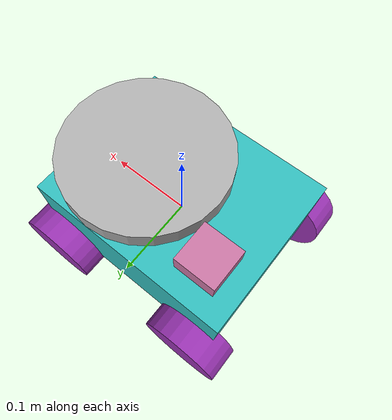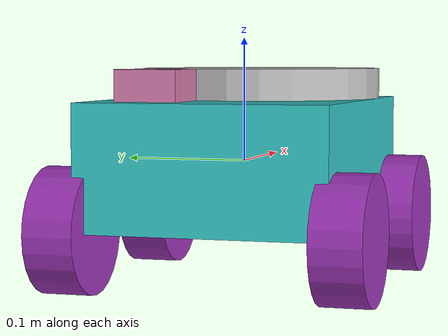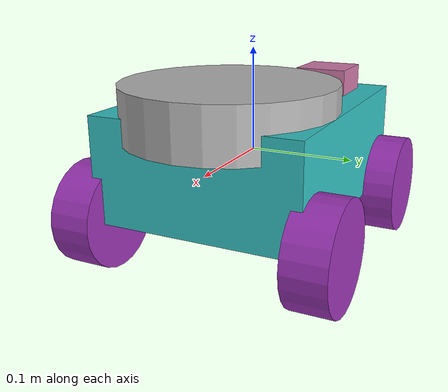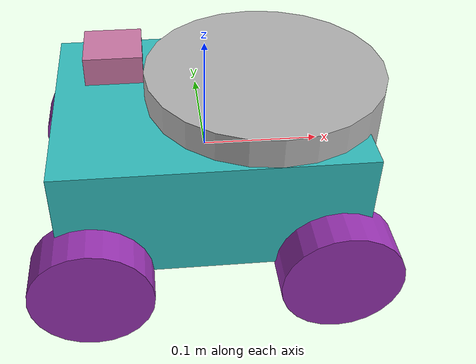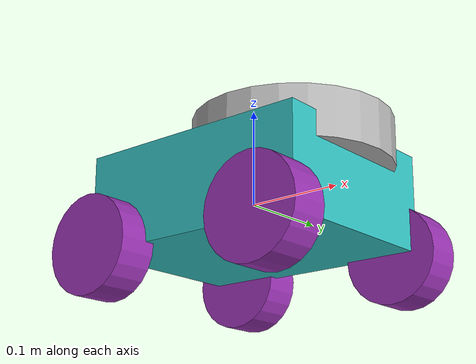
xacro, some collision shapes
<?xml version='1.0'?>

<robot name="my_robot" xmlns:xacro="http://www.ros.org/wiki/xacro">

 <xacro:include filename="$(find my_robot)/urdf/my_robot.gazebo" />

 <link name="robot_footprint"></link>

  <joint name="robot_footprint_joint" type="fixed">
    <origin xyz="0 0 0" rpy="0 0 0" />
    <parent link="robot_footprint"/>
    <child link="chassis" />
  </joint>

  <link name='chassis'>
    <pose>0 0 -0.4 0 0 0</pose>
    <inertial>
      <mass value="12.0"/>
      <origin xyz="0.0 0 0" rpy=" 0 0 0"/>
      <inertia
          ixx="0.1" ixy="0" ixz="0"
          iyy="0.1" iyz="0"
          izz="0.1"
      />
    </inertial>

    <collision name='collision'>
      <origin xyz="0 0 0" rpy=" 0 0 0"/>
      <geometry>
        <box size=".25 .2 .2"/>
      </geometry>
    </collision>

    <visual name='chassis_visual'>
      <origin xyz="0 0 0" rpy=" 0 0 0"/>
      <geometry>
        <box size=".25 .2 .1"/>
      </geometry>
    </visual>
  </link>

  <link name='front_left_wheel'>
     <visual>
      <origin xyz="0.0 0 0" rpy=" 0 1.5707 1.5707"/>
      <geometry>
        <cylinder length="0.04" radius="0.05"/>
      </geometry>
    </visual>

    <inertial>
      <mass value="5.0"/>
      <origin xyz="0.0 0 0" rpy=" 0 1.5707 1.5707"/>
      <inertia
          ixx="0.1" ixy="0" ixz="0"
          iyy="0.1" iyz="0"
          izz="0.1"
      />
    </inertial>

    <collision name='front_left_collision'>
      <origin xyz="0 0 0" rpy=" 0 1.5707 1.5707"/>
      <geometry>
         <cylinder length="0.04" radius="0.05"/>
      </geometry>
    </collision>

  </link>

  <link name='front_right_wheel'>
     <visual>
      <origin xyz="0.0 0 0" rpy=" 0 1.5707 1.5707"/>
      <geometry>
        <cylinder length="0.04" radius="0.05"/>
      </geometry>
    </visual>

    <inertial>
      <mass value="5.0"/>
      <origin xyz="0.0 0 0" rpy=" 0 1.5707 1.5707"/>
      <inertia
          ixx="0.1" ixy="0" ixz="0"
          iyy="0.1" iyz="0"
          izz="0.1"
      />
    </inertial>

    <collision name='front_right_collision'>
      <origin xyz="0 0 0" rpy="0 1.5707 1.5707"/>
      <geometry>
         <cylinder length="0.04" radius="0.05"/>
      </geometry>
    </collision>

  </link>

<link name='rear_left_wheel'>
     <visual>
      <origin xyz="0.0 0 0" rpy=" 0 1.5707 1.5707"/>
      <geometry>
        <cylinder length="0.04" radius="0.05"/>
      </geometry>
    </visual>

    <inertial>
      <mass value="5.0"/>
      <origin xyz="0.0 0 0" rpy=" 0 1.5707 1.5707"/>
      <inertia
          ixx="0.1" ixy="0" ixz="0"
          iyy="0.1" iyz="0"
          izz="0.1"
      />
    </inertial>

    <collision name='rear_left_collision'>
      <origin xyz="0 0 0" rpy=" 0 1.5707 1.5707"/>
      <geometry>
         <cylinder length="0.04" radius="0.05"/>
      </geometry>
    </collision>

  </link>

  <link name='rear_right_wheel'>
     <visual>
      <origin xyz="0.0 0 0" rpy=" 0 1.5707 1.5707"/>
      <geometry>
        <cylinder length="0.04" radius="0.05"/>
      </geometry>
    </visual>

    <inertial>
      <mass value="5.0"/>
      <origin xyz="0.0 0 0" rpy=" 0 1.5707 1.5707"/>
      <inertia
          ixx="0.1" ixy="0" ixz="0"
          iyy="0.1" iyz="0"
          izz="0.1"
      />
    </inertial>

    <collision name='rear_right_collision'>
      <origin xyz="0 0 0" rpy="0 1.5707 1.5707"/>
      <geometry>
         <cylinder length="0.04" radius="0.05"/>
      </geometry>
    </collision>

  </link>

  <link name='camera'>
     <visual>
      <origin xyz="0.025 0 0" rpy=" 0 0 0"/>
      <geometry>
        <box size=".05 .05 .05"/>
      </geometry>
    </visual>

    <inertial name= 'box_inertia'>
      <mass value="0.1"/>
      <geometry>
        <box size=".05 .05 .05"/>
      </geometry>
      <origin xyz="0 0 0" rpy=" 0 0 0"/>
      <inertia
	ixx="1e-6" ixy="0" ixz="0"
	iyy="1e-6" iyz="0"
	izz="1e-6"
      />
    </inertial>

    <collision name='collision'>
      <origin xyz="0 0 0" rpy=" 0 0 0"/>
      <geometry>
        <box size=".05 .05 .05"/>
      </geometry>
    </collision>

  </link>

  <link name='hokuyo'>
     <visual>
      <origin xyz="0 0 0" rpy=" 0 0 0"/>
      <geometry>
	<mesh filename= "package://my_robot/meshes/hokuyo.dae"/>
      </geometry>
    </visual>

    <inertial name= 'box_inertia'>
      <mass value="1e-5"/>
      <geometry>
        <box size=".04 .04 .04"/>
      </geometry>
      <origin xyz="0 0 0" rpy=" 0 0 0"/>
      <inertia
	ixx="1e-6" ixy="0" ixz="0"
	iyy="1e-6" iyz="0"
	izz="1e-6"
      />
    </inertial>

    <collision name='lidar_collision'>
      <origin xyz="0 0 0" rpy=" 0 0 0"/>
      <geometry>
         <cylinder length="0.05" radius="0.1"/>
      </geometry>
    </collision>

  </link>

  <joint type="continuous" name="front_left_wheel_hinge">
    <origin xyz="0.1 0.11 -0.05" rpy="0 0 0"/>
    <child link="front_left_wheel"/>
    <parent link="chassis"/>
    <axis xyz="0 1 0" rpy="0 0 0"/>
    <limit effort="10000" velocity="1000"/>
    <dynamics damping="1.0" friction="1.0"/>
  </joint>

  <joint type="continuous" name="front_right_wheel_hinge">
    <origin xyz="0.1 -0.11 -0.05" rpy="0 0 0"/>
    <child link="front_right_wheel"/>
    <parent link="chassis"/>
    <axis xyz="0 1 0" rpy="0 0 0"/>
    <limit effort="10000" velocity="1000"/>
    <dynamics damping="1.0" friction="1.0"/>
  </joint>

  <joint type="continuous" name="rear_left_wheel_hinge">
    <origin xyz="-0.1 0.11 -0.050" rpy="0 0 0"/>
    <child link="rear_left_wheel"/>
    <parent link="chassis"/>
    <axis xyz="0 1 0" rpy="0 0 0"/>
    <limit effort="10000" velocity="1000"/>
    <dynamics damping="1.0" friction="1.0"/>
  </joint>

  <joint type="continuous" name="rear_right_wheel_hinge">
    <origin xyz="-0.1 -0.11 -0.05" rpy="0 0 0"/>
    <child link="rear_right_wheel"/>
    <parent link="chassis"/>
    <axis xyz="0 1 0" rpy="0 0 0"/>
    <limit effort="10000" velocity="1000"/>
    <dynamics damping="1.0" friction="1.0"/>
  </joint>

  <joint type="fixed" name="camera_joint">
    <origin xyz="-0.1 0.05 0.05" rpy="0 0 0"/>
    <child link="camera"/>
    <parent link="chassis"/>
    <axis xyz="0 1 0" rpy="0 0 0"/>
    <limit effort="10000" velocity="1000"/>
    <dynamics damping="1.0" friction="1.0"/>
  </joint>

  <joint type="fixed" name="hokuyo_joint">
    <origin xyz="0.05 0 0.05" rpy="0 0 0"/>
    <child link="hokuyo"/>
    <parent link="chassis"/>
    <axis xyz="0 1 0" rpy="0 0 0"/>
    <limit effort="10000" velocity="1000"/>
    <dynamics damping="1.0" friction="1.0"/>
  </joint>
</robot>
